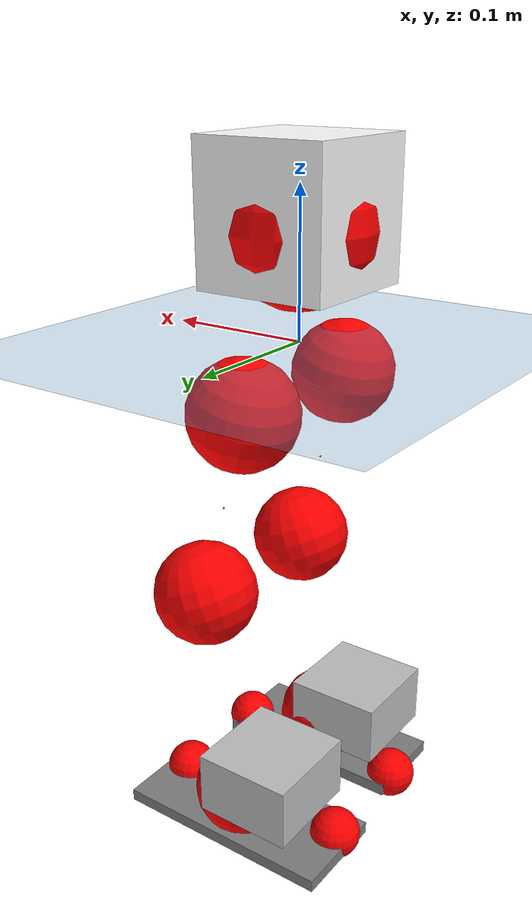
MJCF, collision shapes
<mujoco model="pi_12dof_release_v1">
  <compiler angle="radian" assetdir="assets" balanceinertia="true" inertiafromgeom="false"/>

  <option timestep="0.005" density="1.2" viscosity="2e-05"/>

  <size nkey="1"/>

  <visual>
    <quality shadowsize="8192"/>
    <map shadowclip="0.5"/>
  </visual>

  <default>
    <default class="/">
      <joint armature="0.01" damping="0.01" frictionloss="0.01"/>
      <geom contype="0" conaffinity="0" group="1" solref="-1000 -80"/>
      <site size="0.01 0.005 0.005" group="5"/>
      <general forcelimited="true" biastype="affine" gainprm="20" biasprm="0 -20 -0.5"/>
      <default class="foot">
        <geom size="0.0845 0.036 0.005" type="box" condim="6" group="4" priority="1" friction="0.9 0.2 0.2" solimp="0.015 1 0.005"/>
      </default>
      <default class="reward_collision_sphere">
        <geom group="5" rgba="1 0 0 1"/>
      </default>
    </default>
  </default>

  <asset>
    <texture type="skybox" colorspace="auto" name="//unnamed_texture_0" builtin="gradient" rgb1="0.95 0.95 0.95" rgb2="0.95 0.95 0.95" width="100" height="600"/>
    <texture type="2d" colorspace="auto" name="texplane" builtin="checker" rgb1="0.345 0.575 0.748" rgb2="0.345 0.575 0.748" markrgb="1 1 1" width="512" height="512"/>
    <material name="MatPlane" class="/" texture="texplane" texuniform="true" texrepeat="2 2" specular="0.9"/>
    <mesh name="baselink_1" class="/" file="baselink_1.STL"/>
    <mesh name="r_hip_pitch_link" class="/" file="r_hip_pitch_link.STL"/>
    <mesh name="r_hip_roll_link" class="/" file="r_hip_roll_link.STL"/>
    <mesh name="r_thigh_link" class="/" file="r_thigh_link.STL"/>
    <mesh name="r_calf_link" class="/" file="r_calf_link.STL"/>
    <mesh name="r_ankle_pitch_link" class="/" file="r_ankle_pitch_link.STL"/>
    <mesh name="r_ankle_roll_link" class="/" file="r_ankle_roll_link.STL"/>
    <mesh name="l_hip_pitch_link" class="/" file="l_hip_pitch_link.STL"/>
    <mesh name="l_hip_roll_link" class="/" file="l_hip_roll_link.STL"/>
    <mesh name="l_thigh_link" class="/" file="l_thigh_link.STL"/>
    <mesh name="l_calf_link" class="/" file="l_calf_link.STL"/>
    <mesh name="l_ankle_pitch_link" class="/" file="l_ankle_pitch_link.STL"/>
    <mesh name="l_ankle_roll_link" class="/" file="l_ankle_roll_link.STL"/>
  </asset>

  <worldbody>
    <geom name="floor" class="/" size="100 100 0.125" type="plane" group="0" material="MatPlane"/>
    <light name="toplight_shadow" class="/" pos="0 0 5" dir="0.0990148 0.0990148 -0.990148" type="directional" ambient="0.04 0.04 0.04" diffuse="0.55 0.55 0.55" specular="0.12 0.12 0.12"/>
    <light name="toplight_fill" class="/" pos="0 0 5" dir="0.0990148 0.0990148 -0.990148" type="directional" castshadow="false" ambient="0.04 0.04 0.04" diffuse="0.3 0.3 0.3" specular="0.08 0.08 0.08"/>
    <body name="trunk" pos="0.000148965 0.000657042 -0.000279994" quat="1 2.18288e-06 9.98799e-07 5.70406e-06">
      <inertial pos="0.00234047 -0.000280777 0.0417978" quat="0.697317 0.00930009 0.013278 0.71658" mass="1.76094" diaginertia="0.0104459 0.00212809 0.00496807"/>
      <joint name="//unnamed_joint_0" type="free"/>
      <geom name="//unnamed_geom_1" class="/" type="mesh" density="0" rgba="1 1 1 1" mesh="baselink_1"/>
      <geom name="//unnamed_geom_2" class="/" size="0.0465762 0.0465762 0.0465762" pos="0 0 0.0828574" type="box" rgba="1 1 1 1"/>
      <geom name="//unnamed_geom_3" class="reward_collision_sphere" size="0.0512338" pos="0 0 0.0725002"/>
      <site name="imu" class="/" pos="-0.00366549 -0.00419189 0.00330923" size="0.00931523"/>
      <camera name="track" class="/" pos="0 -1.49538 0" quat="0.707107 0.707107 0 0" mode="trackcom"/>
      <camera name="ego_camera" class="/" pos="0.0758372 0 0.186429" quat="-0.5 -0.5 0.5 0.5"/>
      <body name="r_hip_pitch_link" pos="-0.000617547 -0.0159168 -0.0334778" quat="0.99222 8.06899e-05 -0.124497 0.000229602">
        <inertial pos="0.00127068 -0.0418361 -0.000941499" quat="-0.0192086 0.706413 -0.0290053 0.706944" mass="0.300993" diaginertia="0.000114684 2.32137e-05 9.9483e-05"/>
        <joint name="r_hip_pitch_joint" class="/" pos="0 0 0" axis="0.000651557 -1 -0.000429147" range="-1.75207 1.26633" armature="0.00940934" damping="0.0122941" frictionloss="0.00909161"/>
        <geom name="//unnamed_geom_4" class="/" type="mesh" density="0" rgba="0.75294 0.75294 0.75294 1" mesh="r_hip_pitch_link"/>
        <geom name="//unnamed_geom_5" class="/" size="0.000465762 0.000465762 0.000465762" type="box" rgba="0.75294 0.75294 0.75294 1"/>
        <body name="r_hip_roll_link" pos="0.000329578 -0.0403543 0.00035086" quat="1 -6.89225e-05 -0.000147569 -0.00036162">
          <inertial pos="-0.00185887 -0.00106437 -0.0635974" quat="0.705114 -0.0789922 -0.082608 0.699822" mass="0.313729" diaginertia="0.000351454 6.48689e-05 0.000152178"/>
          <joint name="r_hip_roll_joint" class="/" pos="0 0 0" axis="-0.999993 -0.00335393 -0.00187848" range="-0.12412 0.487547" armature="0.00971314" damping="0.00285913" frictionloss="0.00944846"/>
          <geom name="//unnamed_geom_6" class="/" type="mesh" density="0" rgba="0.75294 0.75294 0.75294 1" mesh="r_hip_roll_link"/>
          <geom name="//unnamed_geom_7" class="/" size="0.000465762 0.000465762 0.000465762" type="box" rgba="0.75294 0.75294 0.75294 1"/>
          <geom name="//unnamed_geom_8" class="reward_collision_sphere" size="0.0372609"/>
          <body name="r_thigh_link" pos="0.000124783 0.000588051 -0.0713075" quat="1 0.000255611 -0.000367807 0.000113068">
            <inertial pos="-0.000497931 0.000579148 -0.0498465" quat="0.737653 0.675179 -0.000391321 -0.000169163" mass="0.0909781" diaginertia="0.000133013 2.21755e-05 6.8496e-05"/>
            <joint name="r_thigh_joint" class="/" pos="0 0 0" axis="-7.45923e-06 6.05789e-05 -1" range="-0.284949 0.596308" armature="0.00948094" damping="0.00302336" frictionloss="0.00935245"/>
            <geom name="//unnamed_geom_9" class="/" type="mesh" density="0" rgba="0.75294 0.75294 0.75294 1" mesh="r_thigh_link"/>
            <geom name="//unnamed_geom_10" class="/" size="0.000465762 0.000465762 0.000465762" type="box" rgba="0.75294 0.75294 0.75294 1"/>
            <body name="r_calf_link" pos="0.0003861 -0.00181299 -0.0725389" quat="0.947645 2.81685e-06 0.319325 4.78546e-05">
              <inertial pos="2.10311e-05 -0.000216233 -0.0718438" quat="0.999987 -0.00267001 -0.000910191 0.00415951" mass="0.656791" diaginertia="0.00369518 0.000805049 0.000205779"/>
              <joint name="r_calf_joint" class="/" pos="0 0 0" axis="0.00307954 -0.999991 0.00305866" range="-1.63211 0.632745" armature="0.00909974" damping="0.00809575" frictionloss="0.00900619"/>
              <geom name="//unnamed_geom_11" class="/" type="mesh" density="0" rgba="0.75294 0.75294 0.75294 1" mesh="r_calf_link"/>
              <geom name="//unnamed_geom_12" class="/" size="0.000465762 0.000465762 0.000465762" type="box" rgba="0.75294 0.75294 0.75294 1"/>
              <geom name="//unnamed_geom_13" class="reward_collision_sphere" size="0.0372609"/>
              <body name="r_ankle_pitch_link" pos="0.000632456 0.00134218 -0.145571" quat="0.980094 0.000232835 -0.198534 -1.10159e-05">
                <inertial pos="0.00562248 0.00195923 0.000103626" quat="0.00501864 0.706775 0.00117874 0.70742" mass="0.139968" diaginertia="0.000322233 5.15762e-05 0.000142273"/>
                <joint name="r_ankle_pitch_joint" class="/" pos="0 0 0" axis="0.00208223 -0.999995 -0.00252066" range="-1.31084 0.506125" armature="0.00923551" damping="0.00473376" frictionloss="0.00933674"/>
                <geom name="//unnamed_geom_14" class="/" type="mesh" density="0" rgba="0.75294 0.75294 0.75294 1" mesh="r_ankle_pitch_link"/>
                <geom name="//unnamed_geom_15" class="/" size="0.0363294 0.0372609 0.0232881" type="box" rgba="0.75294 0.75294 0.75294 1"/>
                <body name="r_ankle_roll_link" pos="0.0765998 0.00287306 0.000559118" quat="1 2.65147e-05 -2.75991e-05 -6.81453e-05">
                  <inertial pos="-0.0244147 0.000129903 -0.0159002" quat="0.561116 0.429883 0.437177 0.556081" mass="0.417432" diaginertia="0.0012028 0.000240957 0.000338331"/>
                  <joint name="r_ankle_roll_joint" class="/" pos="0 0 0" axis="-1 0.000244993 -8.6336e-05" range="-0.161828 0.15269" armature="0.00932845" damping="0.00852953" frictionloss="0.00964693"/>
                  <geom name="//unnamed_geom_16" class="/" type="mesh" density="0" rgba="0.75294 0.75294 0.75294 1" mesh="r_ankle_roll_link"/>
                  <geom name="//unnamed_geom_17" class="/" type="mesh" rgba="0.75294 0.75294 0.75294 1" mesh="r_ankle_roll_link"/>
                  <geom name="right_foot" class="foot" size="0.0738367 0.0341442 0.00463162" pos="-0.0515693 0 -0.0455716"/>
                  <geom name="//unnamed_geom_19" class="reward_collision_sphere" size="0.0372609" pos="-0.0505581 0 -0.0207143"/>
                  <geom name="//unnamed_geom_20" class="reward_collision_sphere" size="0.0186305" pos="0.0151674 0.0149538 -0.0414287"/>
                  <geom name="//unnamed_geom_21" class="reward_collision_sphere" size="0.0186305" pos="-0.12134 0.0149538 -0.0414287"/>
                  <site name="right_foot" class="foot" pos="-0.0515693 0 -0.0455716" size="0.00931523"/>
                </body>
              </body>
            </body>
          </body>
        </body>
      </body>
      <body name="l_hip_pitch_link" pos="-7.76224e-05 0.0173598 -0.0336535" quat="0.992187 1.07475e-05 -0.124762 5.58913e-05">
        <inertial pos="0.00113396 0.0404262 -0.000733248" quat="-0.0402681 0.705182 0.0297215 0.707258" mass="0.315049" diaginertia="0.000135163 2.4474e-05 0.000119726"/>
        <joint name="l_hip_pitch_joint" class="/" pos="0 0 0" axis="-1.44286e-05 1 2.43513e-05" range="-1.2467 1.75179" armature="0.00945973" damping="0.00406473" frictionloss="0.00890372"/>
        <geom name="//unnamed_geom_22" class="/" type="mesh" density="0" rgba="0.75294 0.75294 0.75294 1" mesh="l_hip_pitch_link"/>
        <geom name="//unnamed_geom_23" class="/" size="0.000465762 0.000465762 0.000465762" type="box" rgba="0.75294 0.75294 0.75294 1"/>
        <body name="l_hip_roll_link" pos="0.00116076 0.0419217 -0.000548771" quat="1 0.00012268 -6.33351e-06 -0.000116947">
          <inertial pos="-0.00147621 0.000100114 -0.0637926" quat="0.698743 -0.0723445 -0.0811032 0.707069" mass="0.317177" diaginertia="0.000349954 6.45501e-05 0.000153553"/>
          <joint name="l_hip_roll_joint" class="/" pos="0 0 0" axis="-0.999988 0.00484376 -0.00100248" stiffness="0.000300056" range="-0.506096 0.120498" armature="0.00906843" damping="0.00645289" frictionloss="0.00928097"/>
          <geom name="//unnamed_geom_24" class="/" type="mesh" density="0" rgba="0.75294 0.75294 0.75294 1" mesh="l_hip_roll_link"/>
          <geom name="//unnamed_geom_25" class="/" size="0.000465762 0.000465762 0.000465762" type="box" rgba="0.75294 0.75294 0.75294 1"/>
          <geom name="//unnamed_geom_26" class="reward_collision_sphere" size="0.0372609"/>
          <body name="l_thigh_link" pos="0.00105898 -0.00119027 -0.0719553" quat="1 -3.59115e-05 7.83671e-05 0.000168566">
            <inertial pos="0.000306628 -0.00157648 -0.0498149" quat="0.674654 0.738134 -0.000130865 -1.65856e-05" mass="0.08909" diaginertia="0.0001303 2.19336e-05 6.83089e-05"/>
            <joint name="l_thigh_joint" class="/" pos="0 0 0" axis="-0.000672128 -0.000575699 -1" range="-0.599845 0.300044" armature="0.00974492" damping="0.00227974" frictionloss="0.00926343"/>
            <geom name="//unnamed_geom_27" class="/" type="mesh" density="0" rgba="0.75294 0.75294 0.75294 1" mesh="l_thigh_link"/>
            <geom name="//unnamed_geom_28" class="/" size="0.000465762 0.000465762 0.000465762" type="box" rgba="0.75294 0.75294 0.75294 1"/>
            <body name="l_calf_link" pos="-9.94842e-05 0.00032428 -0.072128" quat="0.947638 0.000180012 0.319347 3.54701e-05">
              <inertial pos="0.000641461 0.00177803 -0.0718402" quat="0.999974 0.00227848 -0.000971466 0.00682605" mass="0.649889" diaginertia="0.00364933 0.000808301 0.000206226"/>
              <joint name="l_calf_joint" class="/" pos="0 0 0" axis="-0.00352034 0.999987 0.00367804" stiffness="0.00306106" range="-0.640057 1.65567" armature="0.00947373" damping="0.00958749" frictionloss="0.00934188"/>
              <geom name="//unnamed_geom_29" class="/" type="mesh" density="0" rgba="0.75294 0.75294 0.75294 1" mesh="l_calf_link"/>
              <geom name="//unnamed_geom_30" class="/" size="0.000465762 0.000465762 0.000465762" type="box" rgba="0.75294 0.75294 0.75294 1"/>
              <geom name="//unnamed_geom_31" class="reward_collision_sphere" size="0.0372609"/>
              <body name="l_ankle_pitch_link" pos="0.000370857 0.000206562 -0.145218" quat="0.980061 -8.21583e-05 -0.198697 -2.24168e-05">
                <inertial pos="0.00500208 -0.000517825 -0.000884563" quat="-0.00380844 0.707982 0.000838742 0.70622" mass="0.143519" diaginertia="0.000327582 5.24487e-05 0.000144282"/>
                <joint name="l_ankle_pitch_joint" class="/" pos="0 0 0" axis="-0.000777071 0.999999 -0.00130457" stiffness="0.000752428" range="-0.496475 1.28427" armature="0.00922512" damping="0.00901622" frictionloss="0.00929513"/>
                <geom name="//unnamed_geom_32" class="/" type="mesh" density="0" rgba="0.75294 0.75294 0.75294 1" mesh="l_ankle_pitch_link"/>
                <geom name="//unnamed_geom_33" class="/" size="0.0363294 0.0372609 0.0232881" type="box" rgba="0.75294 0.75294 0.75294 1"/>
                <body name="l_ankle_roll_link" pos="0.0749517 -0.000350925 -0.000522818" quat="1 0.000351297 0.000135287 6.30765e-05">
                  <inertial pos="-0.0241825 -0.000574203 -0.0151098" quat="0.560227 0.430957 0.433784 0.558796" mass="0.421461" diaginertia="0.00119957 0.000240388 0.000340144"/>
                  <joint name="l_ankle_roll_joint" class="/" pos="0 0 0" axis="-0.99999 0.000164877 -0.0045129" stiffness="0.00206702" range="-0.141907 0.16736" armature="0.00941341" damping="0.00878638" frictionloss="0.00945629"/>
                  <geom name="//unnamed_geom_34" class="/" type="mesh" density="0" rgba="0.75294 0.75294 0.75294 1" mesh="l_ankle_roll_link"/>
                  <geom name="//unnamed_geom_35" class="/" type="mesh" rgba="0.75294 0.75294 0.75294 1" mesh="l_ankle_roll_link"/>
                  <geom name="left_foot" class="foot" size="0.0835121 0.0363481 0.00461066" pos="-0.0515693 0 -0.0455716"/>
                  <geom name="//unnamed_geom_37" class="reward_collision_sphere" size="0.0372609" pos="-0.0505581 0 -0.0207143"/>
                  <geom name="//unnamed_geom_38" class="reward_collision_sphere" size="0.0186305" pos="0.0151674 -0.0149538 -0.0414287"/>
                  <geom name="//unnamed_geom_39" class="reward_collision_sphere" size="0.0186305" pos="-0.12134 -0.0149538 -0.0414287"/>
                  <site name="left_foot" class="foot" pos="-0.0515693 0 -0.0455716" size="0.00931523"/>
                </body>
              </body>
            </body>
          </body>
        </body>
      </body>
    </body>
  </worldbody>

  <contact>
    <pair class="/" geom1="floor" geom2="right_foot" name="//unnamed_contact_1"/>
    <pair class="/" geom1="floor" geom2="left_foot" name="//unnamed_contact_0"/>
  </contact>

  <actuator>
    <general name="r_hip_pitch_joint" class="/" joint="r_hip_pitch_joint" forcerange="-19.2632 19.2632" gainprm="19.1063" biasprm="0 -19.1063 -0.46215"/>
    <general name="r_hip_roll_joint" class="/" joint="r_hip_roll_joint" forcerange="-19.6446 19.6446" gainprm="19.1063" biasprm="0 -19.1063 -0.46215"/>
    <general name="r_thigh_joint" class="/" joint="r_thigh_joint" forcerange="-18.9605 18.9605" gainprm="19.1063" biasprm="0 -19.1063 -0.46215"/>
    <general name="r_calf_joint" class="/" joint="r_calf_joint" forcerange="-19.6336 19.6336" gainprm="19.1063" biasprm="0 -19.1063 -0.46215"/>
    <general name="r_ankle_pitch_joint" class="/" joint="r_ankle_pitch_joint" forcerange="-19.6997 19.6997" gainprm="19.1063" biasprm="0 -19.1063 -0.46215"/>
    <general name="r_ankle_roll_joint" class="/" joint="r_ankle_roll_joint" forcerange="-19.7104 19.7104" gainprm="19.1063" biasprm="0 -19.1063 -0.46215"/>
    <general name="l_hip_pitch_joint" class="/" joint="l_hip_pitch_joint" forcerange="-20.247 20.247" gainprm="19.1063" biasprm="0 -19.1063 -0.46215"/>
    <general name="l_hip_roll_joint" class="/" joint="l_hip_roll_joint" forcerange="-20.2193 20.2193" gainprm="19.1063" biasprm="0 -19.1063 -0.46215"/>
    <general name="l_thigh_joint" class="/" joint="l_thigh_joint" forcerange="-19.3643 19.3643" gainprm="19.1063" biasprm="0 -19.1063 -0.46215"/>
    <general name="l_calf_joint" class="/" joint="l_calf_joint" forcerange="-19.7501 19.7501" gainprm="19.1063" biasprm="0 -19.1063 -0.46215"/>
    <general name="l_ankle_pitch_joint" class="/" joint="l_ankle_pitch_joint" forcerange="-19.7306 19.7306" gainprm="19.1063" biasprm="0 -19.1063 -0.46215"/>
    <general name="l_ankle_roll_joint" class="/" joint="l_ankle_roll_joint" forcerange="-18.9031 18.9031" gainprm="19.1063" biasprm="0 -19.1063 -0.46215"/>
  </actuator>

  <sensor>
    <gyro site="imu" name="imu_angular_velocity"/>
    <velocimeter site="imu" name="imu_linear_velocity"/>
    <framelinvel objtype="site" objname="left_foot" name="left_foot_global_linear_velocity"/>
    <framelinvel objtype="site" objname="right_foot" name="right_foot_global_linear_velocity"/>
  </sensor>

  <keyframe>
    <key name="home" qpos="0 0 0.291 1 0 0 0 0.4 0 0 -0.8 0.4 0 -0.4 0 0 0.8 -0.4 0"/>
  </keyframe>
</mujoco>
